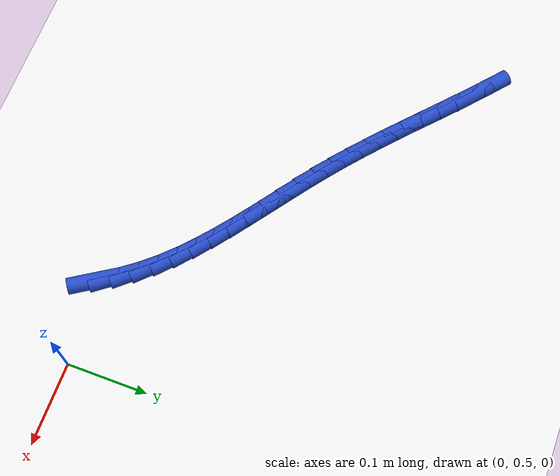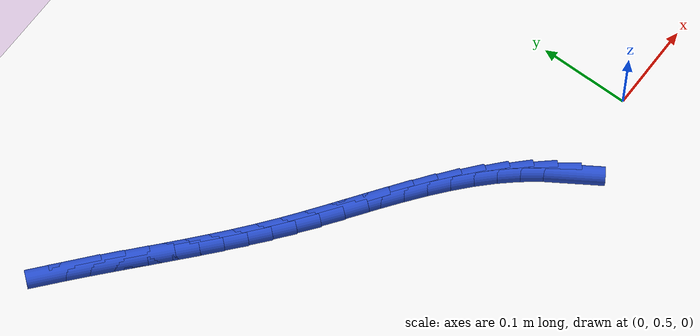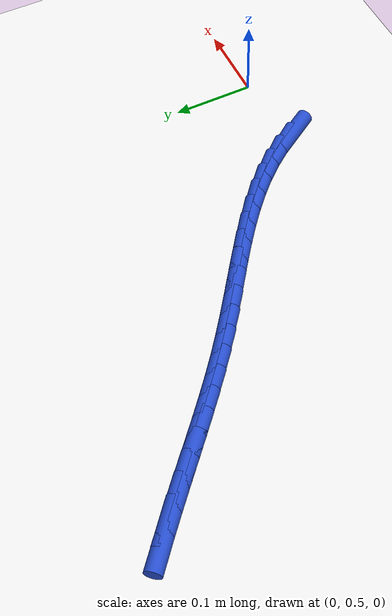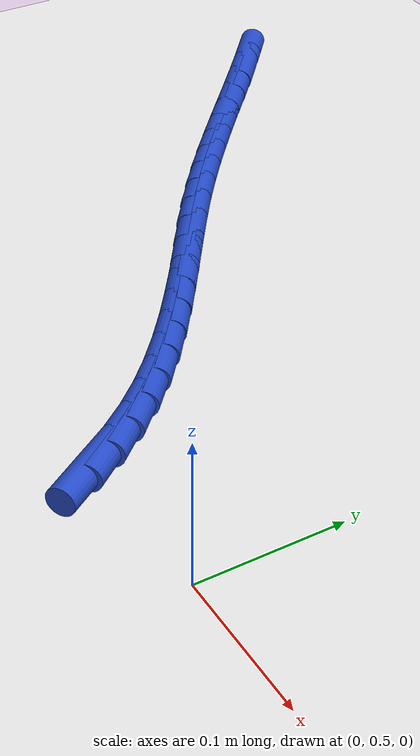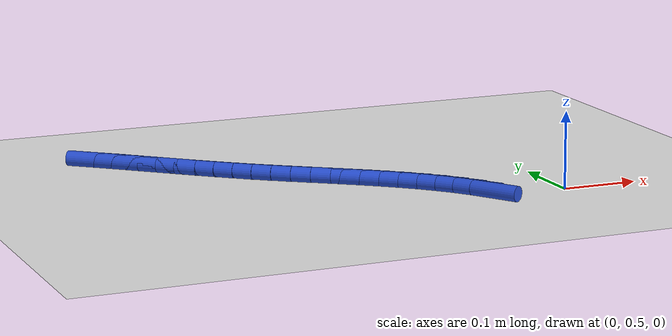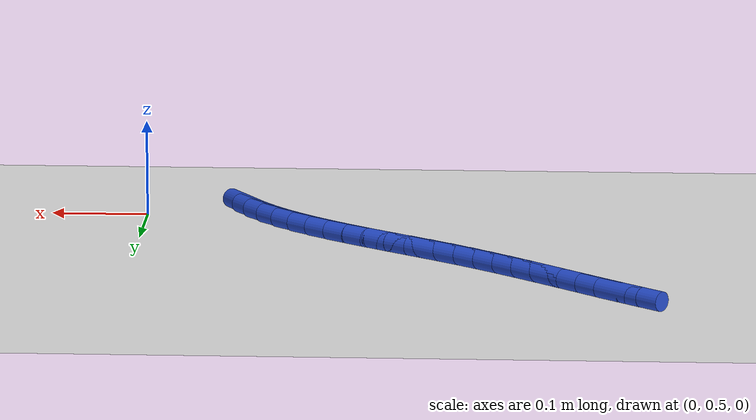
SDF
<sdf version="1.6">
 <world name="default">
  <model name="ground_plane">
   <static>1</static>
   <link name="link">
    <collision name="collision">
     <geometry><plane><normal>0 0 1</normal><size>100 100</size></plane></geometry>
     <surface><friction><ode><mu>100</mu><mu2>50</mu2></ode></friction></surface>
    </collision>
    <visual name="visual">
     <cast_shadows>0</cast_shadows>
     <geometry><plane><normal>0 0 1</normal><size>100 100</size></plane></geometry>
     <material>
      <script><uri>file://media/materials/scripts/gazebo.material</uri><name>Gazebo/WhiteGlow</name></script>
     </material>
    </visual>
   </link>
  </model>
  <model name="line">
   <link name="link_20">
    <pose>-0.10685012283115405 0.4967804284512364 0.01 0 1.57 -0.999661080159758</pose>
    <collision name="collision">
     <geometry><cylinder><radius>0.01</radius><length>0.08</length></cylinder></geometry>
    </collision>
    <visual name="visual">
     <material>
      <script><name>Gazebo/Blue</name><uri>file://media/materials/scripts/gazebo.material</uri></script>
     </material>
     <geometry><cylinder><radius>0.01</radius><length>0.08</length></cylinder></geometry>
    </visual>
   </link>
   <link name="link_21">
    <pose>-0.12016764415302318 0.5175057858608093 0.01 0 1.57 -0.921825333954852</pose>
    <collision name="collision">
     <geometry><cylinder><radius>0.01</radius><length>0.08</length></cylinder></geometry>
    </collision>
    <visual name="visual">
     <material>
      <script><name>Gazebo/Blue</name><uri>file://media/materials/scripts/gazebo.material</uri></script>
     </material>
     <geometry><cylinder><radius>0.01</radius><length>0.08</length></cylinder></geometry>
    </visual>
   </link>
   <link name="link_22">
    <pose>-0.13502901605710235 0.537096775593167 0.01 0 1.57 -0.8472271110047734</pose>
    <collision name="collision">
     <geometry><cylinder><radius>0.01</radius><length>0.08</length></cylinder></geometry>
    </collision>
    <visual name="visual">
     <material>
      <script><name>Gazebo/Blue</name><uri>file://media/materials/scripts/gazebo.material</uri></script>
     </material>
     <geometry><cylinder><radius>0.01</radius><length>0.08</length></cylinder></geometry>
    </visual>
   </link>
   <link name="link_23">
    <pose>-0.15137000946560114 0.55559456321376 0.01 0 1.57 -0.7833091684189385</pose>
    <collision name="collision">
     <geometry><cylinder><radius>0.01</radius><length>0.08</length></cylinder></geometry>
    </collision>
    <visual name="visual">
     <material>
      <script><name>Gazebo/Blue</name><uri>file://media/materials/scripts/gazebo.material</uri></script>
     </material>
     <geometry><cylinder><radius>0.01</radius><length>0.08</length></cylinder></geometry>
    </visual>
   </link>
   <link name="link_24">
    <pose>-0.1689965195687003 0.5731475833479461 0.01 0 1.57 -0.7303190272904614</pose>
    <collision name="collision">
     <geometry><cylinder><radius>0.01</radius><length>0.08</length></cylinder></geometry>
    </collision>
    <visual name="visual">
     <material>
      <script><name>Gazebo/Blue</name><uri>file://media/materials/scripts/gazebo.material</uri></script>
     </material>
     <geometry><cylinder><radius>0.01</radius><length>0.08</length></cylinder></geometry>
    </visual>
   </link>
   <link name="link_25">
    <pose>-0.18771149848549545 0.5899067014098354 0.01 0 1.57 -0.6880008195240946</pose>
    <collision name="collision">
     <geometry><cylinder><radius>0.01</radius><length>0.08</length></cylinder></geometry>
    </collision>
    <visual name="visual">
     <material>
      <script><name>Gazebo/Blue</name><uri>file://media/materials/scripts/gazebo.material</uri></script>
     </material>
     <geometry><cylinder><radius>0.01</radius><length>0.08</length></cylinder></geometry>
    </visual>
   </link>
   <link name="link_26">
    <pose>-0.20731789833508213 0.6060227828135373 0.01 0 1.57 -0.6559410225692032</pose>
    <collision name="collision">
     <geometry><cylinder><radius>0.01</radius><length>0.08</length></cylinder></geometry>
    </collision>
    <visual name="visual">
     <material>
      <script><name>Gazebo/Blue</name><uri>file://media/materials/scripts/gazebo.material</uri></script>
     </material>
     <geometry><cylinder><radius>0.01</radius><length>0.08</length></cylinder></geometry>
    </visual>
   </link>
   <link name="link_27">
    <pose>-0.22761867123655616 0.6216466929731622 0.01 0 1.57 -0.6337069792559067</pose>
    <collision name="collision">
     <geometry><cylinder><radius>0.01</radius><length>0.08</length></cylinder></geometry>
    </collision>
    <visual name="visual">
     <material>
      <script><name>Gazebo/Blue</name><uri>file://media/materials/scripts/gazebo.material</uri></script>
     </material>
     <geometry><cylinder><radius>0.01</radius><length>0.08</length></cylinder></geometry>
    </visual>
   </link>
   <link name="link_28">
    <pose>-0.24841676930901294 0.6369292973028194 0.01 0 1.57 -0.6209363376053827</pose>
    <collision name="collision">
     <geometry><cylinder><radius>0.01</radius><length>0.08</length></cylinder></geometry>
    </collision>
    <visual name="visual">
     <material>
      <script><name>Gazebo/Blue</name><uri>file://media/materials/scripts/gazebo.material</uri></script>
     </material>
     <geometry><cylinder><radius>0.01</radius><length>0.08</length></cylinder></geometry>
    </visual>
   </link>
   <link name="link_29">
    <pose>-0.26951514467154813 0.6520214612166191 0.01 0 1.57 -0.6173886294715584</pose>
    <collision name="collision">
     <geometry><cylinder><radius>0.01</radius><length>0.08</length></cylinder></geometry>
    </collision>
    <visual name="visual">
     <material>
      <script><name>Gazebo/Blue</name><uri>file://media/materials/scripts/gazebo.material</uri></script>
     </material>
     <geometry><cylinder><radius>0.01</radius><length>0.08</length></cylinder></geometry>
    </visual>
   </link>
   <link name="link_30">
    <pose>-0.2907167494432574 0.6670740501286709 0.01 0 1.57 -0.6229699389005323</pose>
    <collision name="collision">
     <geometry><cylinder><radius>0.01</radius><length>0.08</length></cylinder></geometry>
    </collision>
    <visual name="visual">
     <material>
      <script><name>Gazebo/Blue</name><uri>file://media/materials/scripts/gazebo.material</uri></script>
     </material>
     <geometry><cylinder><radius>0.01</radius><length>0.08</length></cylinder></geometry>
    </visual>
   </link>
   <link name="link_31">
    <pose>-0.3118245357432365 0.6822379294530851 0.01 0 1.57 -0.6377378107391887</pose>
    <collision name="collision">
     <geometry><cylinder><radius>0.01</radius><length>0.08</length></cylinder></geometry>
    </collision>
    <visual name="visual">
     <material>
      <script><name>Gazebo/Blue</name><uri>file://media/materials/scripts/gazebo.material</uri></script>
     </material>
     <geometry><cylinder><radius>0.01</radius><length>0.08</length></cylinder></geometry>
    </visual>
   </link>
   <link name="link_32">
    <pose>-0.3326414556905807 0.6976639646039708 0.01 0 1.57 -0.6606003936755541</pose>
    <collision name="collision">
     <geometry><cylinder><radius>0.01</radius><length>0.08</length></cylinder></geometry>
    </collision>
    <visual name="visual">
     <material>
      <script><name>Gazebo/Blue</name><uri>file://media/materials/scripts/gazebo.material</uri></script>
     </material>
     <geometry><cylinder><radius>0.01</radius><length>0.08</length></cylinder></geometry>
    </visual>
   </link>
   <link name="link_33">
    <pose>-0.3529966173404403 0.713481297053206 0.01 0 1.57 -0.6829501100329025</pose>
    <collision name="collision">
     <geometry><cylinder><radius>0.01</radius><length>0.08</length></cylinder></geometry>
    </collision>
    <visual name="visual">
     <material>
      <script><name>Gazebo/Blue</name><uri>file://media/materials/scripts/gazebo.material</uri></script>
     </material>
     <geometry><cylinder><radius>0.01</radius><length>0.08</length></cylinder></geometry>
    </visual>
   </link>
   <link name="link_34">
    <pose>-0.3728970221656594 0.729671318013548 0.01 0 1.57 -0.7010608413306577</pose>
    <collision name="collision">
     <geometry><cylinder><radius>0.01</radius><length>0.08</length></cylinder></geometry>
    </collision>
    <visual name="visual">
     <material>
      <script><name>Gazebo/Blue</name><uri>file://media/materials/scripts/gazebo.material</uri></script>
     </material>
     <geometry><cylinder><radius>0.01</radius><length>0.08</length></cylinder></geometry>
    </visual>
   </link>
   <link name="link_35">
    <pose>-0.39242374764037274 0.7461538945080071 0.01 0 1.57 -0.7148327995534279</pose>
    <collision name="collision">
     <geometry><cylinder><radius>0.01</radius><length>0.08</length></cylinder></geometry>
    </collision>
    <visual name="visual">
     <material>
      <script><name>Gazebo/Blue</name><uri>file://media/materials/scripts/gazebo.material</uri></script>
     </material>
     <geometry><cylinder><radius>0.01</radius><length>0.08</length></cylinder></geometry>
    </visual>
   </link>
   <link name="link_36">
    <pose>-0.4116581152209342 0.7628486909189514 0.01 0 1.57 -0.7242013201195109</pose>
    <collision name="collision">
     <geometry><cylinder><radius>0.01</radius><length>0.08</length></cylinder></geometry>
    </collision>
    <visual name="visual">
     <material>
      <script><name>Gazebo/Blue</name><uri>file://media/materials/scripts/gazebo.material</uri></script>
     </material>
     <geometry><cylinder><radius>0.01</radius><length>0.08</length></cylinder></geometry>
    </visual>
   </link>
   <link name="link_37">
    <pose>-0.43068144636369815 0.7796753716287501 0.01 0 1.57 -0.7291176338764762</pose>
    <collision name="collision">
     <geometry><cylinder><radius>0.01</radius><length>0.08</length></cylinder></geometry>
    </collision>
    <visual name="visual">
     <material>
      <script><name>Gazebo/Blue</name><uri>file://media/materials/scripts/gazebo.material</uri></script>
     </material>
     <geometry><cylinder><radius>0.01</radius><length>0.08</length></cylinder></geometry>
    </visual>
   </link>
   <link name="link_38">
    <pose>-0.4495750625250188 0.796553601019773 0.01 0 1.57 -0.7295437570549339</pose>
    <collision name="collision">
     <geometry><cylinder><radius>0.01</radius><length>0.08</length></cylinder></geometry>
    </collision>
    <visual name="visual">
     <material>
      <script><name>Gazebo/Blue</name><uri>file://media/materials/scripts/gazebo.material</uri></script>
     </material>
     <geometry><cylinder><radius>0.01</radius><length>0.08</length></cylinder></geometry>
    </visual>
   </link>
   <link name="link_39">
    <pose>-0.4684202851612497 0.813403043474388 0.01 0 1.57 -0.7254497983542078</pose>
    <collision name="collision">
     <geometry><cylinder><radius>0.01</radius><length>0.08</length></cylinder></geometry>
    </collision>
    <visual name="visual">
     <material>
      <script><name>Gazebo/Blue</name><uri>file://media/materials/scripts/gazebo.material</uri></script>
     </material>
     <geometry><cylinder><radius>0.01</radius><length>0.08</length></cylinder></geometry>
    </visual>
   </link>
   <link name="link_40">
    <pose>-0.48729843572874526 0.8301433633749645 0.01 0 1.57 -0.7168138878353535</pose>
    <collision name="collision">
     <geometry><cylinder><radius>0.01</radius><length>0.08</length></cylinder></geometry>
    </collision>
    <visual name="visual">
     <material>
      <script><name>Gazebo/Blue</name><uri>file://media/materials/scripts/gazebo.material</uri></script>
     </material>
     <geometry><cylinder><radius>0.01</radius><length>0.08</length></cylinder></geometry>
    </visual>
   </link>
   <link name="link_41">
    <pose>-0.5062908356838595 0.8466942251038714 0.01 0 1.57 -0.7036248560805604</pose>
    <collision name="collision">
     <geometry><cylinder><radius>0.01</radius><length>0.08</length></cylinder></geometry>
    </collision>
    <visual name="visual">
     <material>
      <script><name>Gazebo/Blue</name><uri>file://media/materials/scripts/gazebo.material</uri></script>
     </material>
     <geometry><cylinder><radius>0.01</radius><length>0.08</length></cylinder></geometry>
    </visual>
   </link>
  </model>
 </world>
</sdf>
